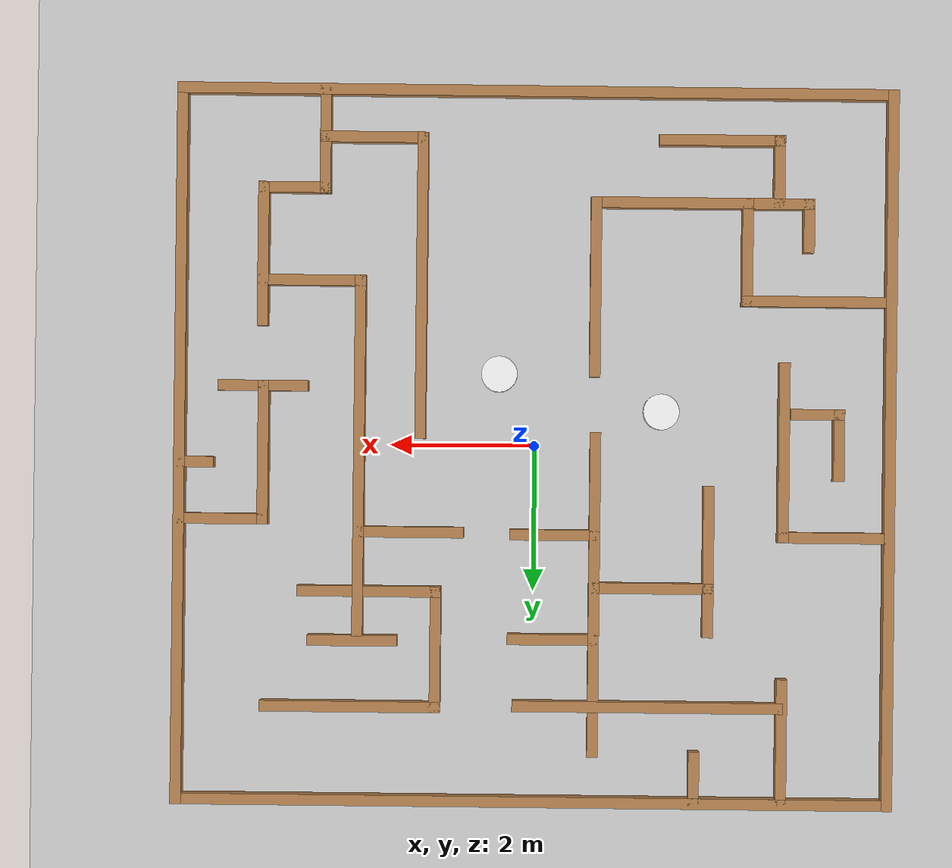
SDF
<sdf version="1.7">
 <world name="default">
  <light name="sun" type="directional">
   <pose>0 0 10 0 -0 0</pose>
   <diffuse>0.8 0.8 0.8 1</diffuse>
   <specular>0.2 0.2 0.2 1</specular>
   <attenuation>
    <range>1000</range>
    <constant>0.9</constant>
    <linear>0.01</linear>
    <quadratic>0.001</quadratic>
   </attenuation>
   <direction>-0.5 0.1 -0.9</direction>
   <spot><inner_angle>0</inner_angle><outer_angle>0</outer_angle><falloff>0</falloff></spot>
  </light>
  <model name="ground_plane">
   <static>1</static>
   <link name="link">
    <collision name="collision">
     <geometry><plane><normal>0 0 1</normal><size>100 100</size></plane></geometry>
     <surface>
      <contact><collide_bitmask>65535</collide_bitmask></contact>
      <friction><ode><mu>100</mu><mu2>50</mu2></ode></friction>
     </surface>
    </collision>
    <visual name="visual">
     <cast_shadows>0</cast_shadows>
     <geometry><plane><normal>0 0 1</normal><size>100 100</size></plane></geometry>
     <material>
      <script><uri>file://media/materials/scripts/gazebo.material</uri><name>Gazebo/Grey</name></script>
     </material>
    </visual>
   </link>
  </model>
  <gravity>0 0 -9.8</gravity>
  <magnetic_field>6e-06 2.3e-05 -4.2e-05</magnetic_field>
  <atmosphere type="adiabatic"/>
  <physics type="ode">
   <max_step_size>0.001</max_step_size>
   <real_time_factor>1</real_time_factor>
   <real_time_update_rate>1000</real_time_update_rate>
  </physics>
  <scene><ambient>0.4 0.4 0.4 1</ambient><background>0.7 0.7 0.7 1</background><shadows>1</shadows></scene>
  <audio><device>default</device></audio>
  <spherical_coordinates>
   <surface_model>EARTH_WGS84</surface_model>
   <latitude_deg>0</latitude_deg>
   <longitude_deg>0</longitude_deg>
   <elevation>0</elevation>
   <heading_deg>0</heading_deg>
  </spherical_coordinates>
  <model name="maze_one">
   <link name="Wall_1">
    <collision name="Wall_1_Collision">
     <geometry><box><size>10 0.15 0.5</size></box></geometry>
     <pose>0 0 0.25 0 -0 0</pose>
    </collision>
    <visual name="Wall_1_Visual">
     <pose>0 0 0.25 0 -0 0</pose>
     <geometry><box><size>10 0.15 0.5</size></box></geometry>
     <material>
      <script><uri>file://media/materials/scripts/gazebo.material</uri><name>Gazebo/Wood</name></script>
      <ambient>0.760784 0.662745 0.627451 1</ambient>
     </material>
     <meta><layer>0</layer></meta>
    </visual>
    <pose>-4.925 0 0 0 -0 -1.5708</pose>
   </link>
   <link name="Wall_11">
    <collision name="Wall_11_Collision">
     <geometry><box><size>2 0.15 0.5</size></box></geometry>
     <pose>0 0 0.25 0 -0 0</pose>
    </collision>
    <visual name="Wall_11_Visual">
     <pose>0 0 0.25 0 -0 0</pose>
     <geometry><box><size>2 0.15 0.5</size></box></geometry>
     <material>
      <script><uri>file://media/materials/scripts/gazebo.material</uri><name>Gazebo/Wood</name></script>
      <ambient>0.760784 0.662745 0.627451 1</ambient>
     </material>
     <meta><layer>0</layer></meta>
    </visual>
    <pose>3.764 0.118 0 0 -0 1.5708</pose>
   </link>
   <link name="Wall_12">
    <collision name="Wall_12_Collision">
     <geometry><box><size>1.25 0.15 0.5</size></box></geometry>
     <pose>0 0 0.25 0 -0 0</pose>
    </collision>
    <visual name="Wall_12_Visual">
     <pose>0 0 0.25 0 -0 0</pose>
     <geometry><box><size>1.25 0.15 0.5</size></box></geometry>
     <material>
      <script><uri>file://media/materials/scripts/gazebo.material</uri><name>Gazebo/Wood</name></script>
      <ambient>0.760784 0.662745 0.627451 1</ambient>
     </material>
     <meta><layer>0</layer></meta>
    </visual>
    <pose>4.314 1.043 0 0 -0 0</pose>
   </link>
   <link name="Wall_16">
    <collision name="Wall_16_Collision">
     <geometry><box><size>1.25 0.15 0.5</size></box></geometry>
     <pose>0 0 0.25 0 -0 0</pose>
    </collision>
    <visual name="Wall_16_Visual">
     <pose>0 0 0.25 0 -0 0</pose>
     <geometry><box><size>1.25 0.15 0.5</size></box></geometry>
     <material>
      <script><uri>file://media/materials/scripts/gazebo.material</uri><name>Gazebo/Wood</name></script>
      <ambient>0.760784 0.662745 0.627451 1</ambient>
     </material>
     <meta><layer>0</layer></meta>
    </visual>
    <pose>3.771 -0.807 0 0 -0 0</pose>
   </link>
   <link name="Wall_18">
    <collision name="Wall_18_Collision">
     <geometry><box><size>1.5 0.15 0.5</size></box></geometry>
     <pose>0 0 0.25 0 -0 0</pose>
    </collision>
    <visual name="Wall_18_Visual">
     <pose>0 0 0.25 0 -0 0</pose>
     <geometry><box><size>1.5 0.15 0.5</size></box></geometry>
     <material>
      <script><uri>file://media/materials/scripts/gazebo.material</uri><name>Gazebo/Wood</name></script>
      <ambient>0.760784 0.662745 0.627451 1</ambient>
     </material>
     <meta><layer>0</layer></meta>
    </visual>
    <pose>3.109 -2.275 0 0 -0 3.14159</pose>
   </link>
   <link name="Wall_19">
    <collision name="Wall_19_Collision">
     <geometry><box><size>5 0.15 0.5</size></box></geometry>
     <pose>0 0 0.25 0 -0 0</pose>
    </collision>
    <visual name="Wall_19_Visual">
     <pose>0 0 0.25 0 -0 0</pose>
     <geometry><box><size>5 0.15 0.5</size></box></geometry>
     <material>
      <script><uri>file://media/materials/scripts/gazebo.material</uri><name>Gazebo/Wood</name></script>
      <ambient>0.760784 0.662745 0.627451 1</ambient>
     </material>
     <meta><layer>0</layer></meta>
    </visual>
    <pose>2.434 0.15 0 0 -0 1.5708</pose>
   </link>
   <link name="Wall_2">
    <collision name="Wall_2_Collision">
     <geometry><box><size>10 0.15 0.5</size></box></geometry>
     <pose>0 0 0.25 0 -0 0</pose>
    </collision>
    <visual name="Wall_2_Visual">
     <pose>0 0 0.25 0 -0 0</pose>
     <geometry><box><size>10 0.15 0.5</size></box></geometry>
     <material>
      <script><uri>file://media/materials/scripts/gazebo.material</uri><name>Gazebo/Wood</name></script>
      <ambient>0.760784 0.662745 0.627451 1</ambient>
     </material>
     <meta><layer>0</layer></meta>
    </visual>
    <pose>0 -4.925 0 0 -0 0</pose>
   </link>
   <link name="Wall_21">
    <collision name="Wall_21_Collision">
     <geometry><box><size>2 0.15 0.5</size></box></geometry>
     <pose>0 0 0.25 0 -0 0</pose>
    </collision>
    <visual name="Wall_21_Visual">
     <pose>0 0 0.25 0 -0 0</pose>
     <geometry><box><size>2 0.15 0.5</size></box></geometry>
     <material>
      <script><uri>file://media/materials/scripts/gazebo.material</uri><name>Gazebo/Wood</name></script>
      <ambient>0.760784 0.662745 0.627451 1</ambient>
     </material>
     <meta><layer>0</layer></meta>
    </visual>
    <pose>2.275 2.029 0 0 -0 3.14159</pose>
   </link>
   <link name="Wall_22">
    <collision name="Wall_22_Collision">
     <geometry><box><size>1.75 0.15 0.5</size></box></geometry>
     <pose>0 0 0.25 0 -0 0</pose>
    </collision>
    <visual name="Wall_22_Visual">
     <pose>0 0 0.25 0 -0 0</pose>
     <geometry><box><size>1.75 0.15 0.5</size></box></geometry>
     <material>
      <script><uri>file://media/materials/scripts/gazebo.material</uri><name>Gazebo/Wood</name></script>
      <ambient>0.760784 0.662745 0.627451 1</ambient>
     </material>
     <meta><layer>0</layer></meta>
    </visual>
    <pose>1.35 2.829 0 0 -0 1.5708</pose>
   </link>
   <link name="Wall_23">
    <collision name="Wall_23_Collision">
     <geometry><box><size>2.5 0.15 0.5</size></box></geometry>
     <pose>0 0 0.25 0 -0 0</pose>
    </collision>
    <visual name="Wall_23_Visual">
     <pose>0 0 0.25 0 -0 0</pose>
     <geometry><box><size>2.5 0.15 0.5</size></box></geometry>
     <material>
      <script><uri>file://media/materials/scripts/gazebo.material</uri><name>Gazebo/Wood</name></script>
      <ambient>0.760784 0.662745 0.627451 1</ambient>
     </material>
     <meta><layer>0</layer></meta>
    </visual>
    <pose>2.525 3.629 0 0 -0 0</pose>
   </link>
   <link name="Wall_26">
    <collision name="Wall_26_Collision">
     <geometry><box><size>1.25 0.15 0.5</size></box></geometry>
     <pose>0 0 0.25 0 -0 0</pose>
    </collision>
    <visual name="Wall_26_Visual">
     <pose>0 0 0.25 0 -0 0</pose>
     <geometry><box><size>1.25 0.15 0.5</size></box></geometry>
     <material>
      <script><uri>file://media/materials/scripts/gazebo.material</uri><name>Gazebo/Wood</name></script>
      <ambient>0.760784 0.662745 0.627451 1</ambient>
     </material>
     <meta><layer>0</layer></meta>
    </visual>
    <pose>2.503 2.713 0 0 -0 0</pose>
   </link>
   <link name="Wall_28">
    <collision name="Wall_28_Collision">
     <geometry><box><size>3.75 0.15 0.5</size></box></geometry>
     <pose>0 0 0.25 0 -0 0</pose>
    </collision>
    <visual name="Wall_28_Visual">
     <pose>0 0 0.25 0 -0 0</pose>
     <geometry><box><size>3.75 0.15 0.5</size></box></geometry>
     <material>
      <script><uri>file://media/materials/scripts/gazebo.material</uri><name>Gazebo/Wood</name></script>
      <ambient>0.760784 0.662745 0.627451 1</ambient>
     </material>
     <meta><layer>0</layer></meta>
    </visual>
    <pose>-1.596 3.598 0 0 -0 3.14159</pose>
   </link>
   <link name="Wall_3">
    <collision name="Wall_3_Collision">
     <geometry><box><size>10 0.15 0.5</size></box></geometry>
     <pose>0 0 0.25 0 -0 0</pose>
    </collision>
    <visual name="Wall_3_Visual">
     <pose>0 0 0.25 0 -0 0</pose>
     <geometry><box><size>10 0.15 0.5</size></box></geometry>
     <material>
      <script><uri>file://media/materials/scripts/gazebo.material</uri><name>Gazebo/Wood</name></script>
      <ambient>0.760784 0.662745 0.627451 1</ambient>
     </material>
     <meta><layer>0</layer></meta>
    </visual>
    <pose>4.925 0 0 0 -0 1.5708</pose>
   </link>
   <link name="Wall_31">
    <collision name="Wall_31_Collision">
     <geometry><box><size>4.5 0.15 0.5</size></box></geometry>
     <pose>0 0 0.25 0 -0 0</pose>
    </collision>
    <visual name="Wall_31_Visual">
     <pose>0 0 0.25 0 -0 0</pose>
     <geometry><box><size>4.5 0.15 0.5</size></box></geometry>
     <material>
      <script><uri>file://media/materials/scripts/gazebo.material</uri><name>Gazebo/Wood</name></script>
      <ambient>0.760784 0.662745 0.627451 1</ambient>
     </material>
     <meta><layer>0</layer></meta>
    </visual>
    <pose>-0.842 2.046 0 0 -0 -1.5708</pose>
   </link>
   <link name="Wall_33">
    <collision name="Wall_33_Collision">
     <geometry><box><size>0.75 0.15 0.5</size></box></geometry>
     <pose>0 0 0.25 0 -0 0</pose>
    </collision>
    <visual name="Wall_33_Visual">
     <pose>0 0 0.25 0 -0 0</pose>
     <geometry><box><size>0.75 0.15 0.5</size></box></geometry>
     <material>
      <script><uri>file://media/materials/scripts/gazebo.material</uri><name>Gazebo/Wood</name></script>
      <ambient>0.760784 0.662745 0.627451 1</ambient>
     </material>
     <meta><layer>0</layer></meta>
    </visual>
    <pose>-2.25 4.582 0 0 -0 1.5708</pose>
   </link>
   <link name="Wall_35">
    <collision name="Wall_35_Collision">
     <geometry><box><size>1.25 0.15 0.5</size></box></geometry>
     <pose>0 0 0.25 0 -0 0</pose>
    </collision>
    <visual name="Wall_35_Visual">
     <pose>0 0 0.25 0 -0 0</pose>
     <geometry><box><size>1.25 0.15 0.5</size></box></geometry>
     <material>
      <script><uri>file://media/materials/scripts/gazebo.material</uri><name>Gazebo/Wood</name></script>
      <ambient>0.760784 0.662745 0.627451 1</ambient>
     </material>
     <meta><layer>0</layer></meta>
    </visual>
    <pose>-0.272 2.673 0 0 -0 0</pose>
   </link>
   <link name="Wall_37">
    <collision name="Wall_37_Collision">
     <geometry><box><size>1.25 0.15 0.5</size></box></geometry>
     <pose>0 0 0.25 0 -0 0</pose>
    </collision>
    <visual name="Wall_37_Visual">
     <pose>0 0 0.25 0 -0 0</pose>
     <geometry><box><size>1.25 0.15 0.5</size></box></geometry>
     <material>
      <script><uri>file://media/materials/scripts/gazebo.material</uri><name>Gazebo/Wood</name></script>
      <ambient>0.760784 0.662745 0.627451 1</ambient>
     </material>
     <meta><layer>0</layer></meta>
    </visual>
    <pose>-0.292 1.224 0 0 -0 0</pose>
   </link>
   <link name="Wall_4">
    <collision name="Wall_4_Collision">
     <geometry><box><size>10 0.15 0.5</size></box></geometry>
     <pose>0 0 0.25 0 -0 0</pose>
    </collision>
    <visual name="Wall_4_Visual">
     <pose>0 0 0.25 0 -0 0</pose>
     <geometry><box><size>10 0.15 0.5</size></box></geometry>
     <material>
      <script><uri>file://media/materials/scripts/gazebo.material</uri><name>Gazebo/Wood</name></script>
      <ambient>0.760784 0.662745 0.627451 1</ambient>
     </material>
     <meta><layer>0</layer></meta>
    </visual>
    <pose>0 4.925 0 0 -0 3.14159</pose>
   </link>
   <link name="Wall_40">
    <collision name="Wall_40_Collision">
     <geometry><box><size>1.5 0.15 0.5</size></box></geometry>
     <pose>0 0 0.25 0 -0 0</pose>
    </collision>
    <visual name="Wall_40_Visual">
     <pose>0 0 0.25 0 -0 0</pose>
     <geometry><box><size>1.5 0.15 0.5</size></box></geometry>
     <material>
      <script><uri>file://media/materials/scripts/gazebo.material</uri><name>Gazebo/Wood</name></script>
      <ambient>0.760784 0.662745 0.627451 1</ambient>
     </material>
     <meta><layer>0</layer></meta>
    </visual>
    <pose>1.723 1.204 0 0 -0 0</pose>
   </link>
   <link name="Wall_42">
    <collision name="Wall_42_Collision">
     <geometry><box><size>2.5 0.15 0.5</size></box></geometry>
     <pose>0 0 0.25 0 -0 0</pose>
    </collision>
    <visual name="Wall_42_Visual">
     <pose>0 0 0.25 0 -0 0</pose>
     <geometry><box><size>2.5 0.15 0.5</size></box></geometry>
     <material>
      <script><uri>file://media/materials/scripts/gazebo.material</uri><name>Gazebo/Wood</name></script>
      <ambient>0.760784 0.662745 0.627451 1</ambient>
     </material>
     <meta><layer>0</layer></meta>
    </visual>
    <pose>-0.822 -2.223 0 0 -0 -1.5708</pose>
   </link>
   <link name="Wall_43">
    <collision name="Wall_43_Collision">
     <geometry><box><size>2.25 0.15 0.5</size></box></geometry>
     <pose>0 0 0.25 0 -0 0</pose>
    </collision>
    <visual name="Wall_43_Visual">
     <pose>0 0 0.25 0 -0 0</pose>
     <geometry><box><size>2.25 0.15 0.5</size></box></geometry>
     <material>
      <script><uri>file://media/materials/scripts/gazebo.material</uri><name>Gazebo/Wood</name></script>
      <ambient>0.760784 0.662745 0.627451 1</ambient>
     </material>
     <meta><layer>0</layer></meta>
    </visual>
    <pose>-1.872 -3.398 0 0 -0 3.14159</pose>
   </link>
   <link name="Wall_44">
    <collision name="Wall_44_Collision">
     <geometry><box><size>1.5 0.15 0.5</size></box></geometry>
     <pose>0 0 0.25 0 -0 0</pose>
    </collision>
    <visual name="Wall_44_Visual">
     <pose>0 0 0.25 0 -0 0</pose>
     <geometry><box><size>1.5 0.15 0.5</size></box></geometry>
     <material>
      <script><uri>file://media/materials/scripts/gazebo.material</uri><name>Gazebo/Wood</name></script>
      <ambient>0.760784 0.662745 0.627451 1</ambient>
     </material>
     <meta><layer>0</layer></meta>
    </visual>
    <pose>-2.922 -2.723 0 0 -0 1.5708</pose>
   </link>
   <link name="Wall_45">
    <collision name="Wall_45_Collision">
     <geometry><box><size>2 0.15 0.5</size></box></geometry>
     <pose>0 0 0.25 0 -0 0</pose>
    </collision>
    <visual name="Wall_45_Visual">
     <pose>0 0 0.25 0 -0 0</pose>
     <geometry><box><size>2 0.15 0.5</size></box></geometry>
     <material>
      <script><uri>file://media/materials/scripts/gazebo.material</uri><name>Gazebo/Wood</name></script>
      <ambient>0.760784 0.662745 0.627451 1</ambient>
     </material>
     <meta><layer>0</layer></meta>
    </visual>
    <pose>-3.847 -2.048 0 0 -0 3.14159</pose>
   </link>
   <link name="Wall_47">
    <collision name="Wall_47_Collision">
     <geometry><box><size>1 0.15 0.5</size></box></geometry>
     <pose>0 0 0.25 0 -0 0</pose>
    </collision>
    <visual name="Wall_47_Visual">
     <pose>0 0 0.25 0 -0 0</pose>
     <geometry><box><size>1 0.15 0.5</size></box></geometry>
     <material>
      <script><uri>file://media/materials/scripts/gazebo.material</uri><name>Gazebo/Wood</name></script>
      <ambient>0.760784 0.662745 0.627451 1</ambient>
     </material>
     <meta><layer>0</layer></meta>
    </visual>
    <pose>-3.347 -3.398 0 0 -0 3.14159</pose>
   </link>
   <link name="Wall_48">
    <collision name="Wall_48_Collision">
     <geometry><box><size>0.75 0.15 0.5</size></box></geometry>
     <pose>0 0 0.25 0 -0 0</pose>
    </collision>
    <visual name="Wall_48_Visual">
     <pose>0 0 0.25 0 -0 0</pose>
     <geometry><box><size>0.75 0.15 0.5</size></box></geometry>
     <material>
      <script><uri>file://media/materials/scripts/gazebo.material</uri><name>Gazebo/Wood</name></script>
      <ambient>0.760784 0.662745 0.627451 1</ambient>
     </material>
     <meta><layer>0</layer></meta>
    </visual>
    <pose>-3.772 -3.098 0 0 -0 1.5708</pose>
   </link>
   <link name="Wall_50">
    <collision name="Wall_50_Collision">
     <geometry><box><size>1 0.15 0.5</size></box></geometry>
     <pose>0 0 0.25 0 -0 0</pose>
    </collision>
    <visual name="Wall_50_Visual">
     <pose>0 0 0.25 0 -0 0</pose>
     <geometry><box><size>1 0.15 0.5</size></box></geometry>
     <material>
      <script><uri>file://media/materials/scripts/gazebo.material</uri><name>Gazebo/Wood</name></script>
      <ambient>0.760784 0.662745 0.627451 1</ambient>
     </material>
     <meta><layer>0</layer></meta>
    </visual>
    <pose>-3.357 -3.847 0 0 -0 -1.5708</pose>
   </link>
   <link name="Wall_51">
    <collision name="Wall_51_Collision">
     <geometry><box><size>1.75 0.15 0.5</size></box></geometry>
     <pose>0 0 0.25 0 -0 0</pose>
    </collision>
    <visual name="Wall_51_Visual">
     <pose>0 0 0.25 0 -0 0</pose>
     <geometry><box><size>1.75 0.15 0.5</size></box></geometry>
     <material>
      <script><uri>file://media/materials/scripts/gazebo.material</uri><name>Gazebo/Wood</name></script>
      <ambient>0.760784 0.662745 0.627451 1</ambient>
     </material>
     <meta><layer>0</layer></meta>
    </visual>
    <pose>-2.557 -4.272 0 0 -0 0</pose>
   </link>
   <link name="Wall_54">
    <collision name="Wall_54_Collision">
     <geometry><box><size>0.75 0.15 0.5</size></box></geometry>
     <pose>0 0 0.25 0 -0 0</pose>
    </collision>
    <visual name="Wall_54_Visual">
     <pose>0 0 0.25 0 -0 0</pose>
     <geometry><box><size>0.75 0.15 0.5</size></box></geometry>
     <material>
      <script><uri>file://media/materials/scripts/gazebo.material</uri><name>Gazebo/Wood</name></script>
      <ambient>0.760784 0.662745 0.627451 1</ambient>
     </material>
     <meta><layer>0</layer></meta>
    </visual>
    <pose>-2.422 2.249 0 0 -0 1.5708</pose>
   </link>
   <link name="Wall_56">
    <collision name="Wall_56_Collision">
     <geometry><box><size>1.5 0.15 0.5</size></box></geometry>
     <pose>0 0 0.25 0 -0 0</pose>
    </collision>
    <visual name="Wall_56_Visual">
     <pose>0 0 0.25 0 -0 0</pose>
     <geometry><box><size>1.5 0.15 0.5</size></box></geometry>
     <material>
      <script><uri>file://media/materials/scripts/gazebo.material</uri><name>Gazebo/Wood</name></script>
      <ambient>0.760784 0.662745 0.627451 1</ambient>
     </material>
     <meta><layer>0</layer></meta>
    </visual>
    <pose>-2.422 1.274 0 0 -0 -1.5708</pose>
   </link>
   <link name="Wall_59">
    <collision name="Wall_59_Collision">
     <geometry><box><size>2.5 0.15 0.5</size></box></geometry>
     <pose>0 0 0.25 0 -0 0</pose>
    </collision>
    <visual name="Wall_59_Visual">
     <pose>0 0 0.25 0 -0 0</pose>
     <geometry><box><size>2.5 0.15 0.5</size></box></geometry>
     <material>
      <script><uri>file://media/materials/scripts/gazebo.material</uri><name>Gazebo/Wood</name></script>
      <ambient>0.760784 0.662745 0.627451 1</ambient>
     </material>
     <meta><layer>0</layer></meta>
    </visual>
    <pose>-3.455 0.049 0 0 -0 -1.5708</pose>
   </link>
   <link name="Wall_61">
    <collision name="Wall_61_Collision">
     <geometry><box><size>1.5 0.15 0.5</size></box></geometry>
     <pose>0 0 0.25 0 -0 0</pose>
    </collision>
    <visual name="Wall_61_Visual">
     <pose>0 0 0.25 0 -0 0</pose>
     <geometry><box><size>1.5 0.15 0.5</size></box></geometry>
     <material>
      <script><uri>file://media/materials/scripts/gazebo.material</uri><name>Gazebo/Wood</name></script>
      <ambient>0.760784 0.662745 0.627451 1</ambient>
     </material>
     <meta><layer>0</layer></meta>
    </visual>
    <pose>2.264 -4.267 0 0 -0 3.14159</pose>
   </link>
   <link name="Wall_62">
    <collision name="Wall_62_Collision">
     <geometry><box><size>4.25 0.15 0.5</size></box></geometry>
     <pose>0 0 0.25 0 -0 0</pose>
    </collision>
    <visual name="Wall_62_Visual">
     <pose>0 0 0.25 0 -0 0</pose>
     <geometry><box><size>4.25 0.15 0.5</size></box></geometry>
     <material>
      <script><uri>file://media/materials/scripts/gazebo.material</uri><name>Gazebo/Wood</name></script>
      <ambient>0.760784 0.662745 0.627451 1</ambient>
     </material>
     <meta><layer>0</layer></meta>
    </visual>
    <pose>1.589 -2.217 0 0 -0 1.5708</pose>
   </link>
   <link name="Wall_65">
    <collision name="Wall_65_Collision">
     <geometry><box><size>0.75 0.15 0.5</size></box></geometry>
     <pose>0 0 0.25 0 -0 0</pose>
    </collision>
    <visual name="Wall_65_Visual">
     <pose>0 0 0.25 0 -0 0</pose>
     <geometry><box><size>0.75 0.15 0.5</size></box></geometry>
     <material>
      <script><uri>file://media/materials/scripts/gazebo.material</uri><name>Gazebo/Wood</name></script>
      <ambient>0.760784 0.662745 0.627451 1</ambient>
     </material>
     <meta><layer>0</layer></meta>
    </visual>
    <pose>-3.918 -0.485 0 0 -0 3.14159</pose>
   </link>
   <link name="Wall_66">
    <collision name="Wall_66_Collision">
     <geometry><box><size>1 0.15 0.5</size></box></geometry>
     <pose>0 0 0.25 0 -0 0</pose>
    </collision>
    <visual name="Wall_66_Visual">
     <pose>0 0 0.25 0 -0 0</pose>
     <geometry><box><size>1 0.15 0.5</size></box></geometry>
     <material>
      <script><uri>file://media/materials/scripts/gazebo.material</uri><name>Gazebo/Wood</name></script>
      <ambient>0.760784 0.662745 0.627451 1</ambient>
     </material>
     <meta><layer>0</layer></meta>
    </visual>
    <pose>-4.218 -0.06 0 0 -0 1.5708</pose>
   </link>
   <link name="Wall_7">
    <collision name="Wall_7_Collision">
     <geometry><box><size>1.5 0.15 0.5</size></box></geometry>
     <pose>0 0 0.25 0 -0 0</pose>
    </collision>
    <visual name="Wall_7_Visual">
     <pose>0 0 0.25 0 -0 0</pose>
     <geometry><box><size>1.5 0.15 0.5</size></box></geometry>
     <material>
      <script><uri>file://media/materials/scripts/gazebo.material</uri><name>Gazebo/Wood</name></script>
      <ambient>0.760784 0.662745 0.627451 1</ambient>
     </material>
     <meta><layer>0</layer></meta>
    </visual>
    <pose>2.939 -4.235 0 0 -0 1.5708</pose>
   </link>
   <link name="Wall_70">
    <collision name="Wall_70_Collision">
     <geometry><box><size>0.5 0.15 0.5</size></box></geometry>
     <pose>0 0 0.25 0 -0 0</pose>
    </collision>
    <visual name="Wall_70_Visual">
     <pose>0 0 0.25 0 -0 0</pose>
     <geometry><box><size>0.5 0.15 0.5</size></box></geometry>
     <material>
      <script><uri>file://media/materials/scripts/gazebo.material</uri><name>Gazebo/Wood</name></script>
      <ambient>0.760784 0.662745 0.627451 1</ambient>
     </material>
     <meta><layer>0</layer></meta>
    </visual>
    <pose>4.695 0.259 0 0 -0 3.14159</pose>
   </link>
   <link name="Wall_72">
    <collision name="Wall_72_Collision">
     <geometry><box><size>1.7 0.15 0.5</size></box></geometry>
     <pose>0 0 0.25 0 -0 0</pose>
    </collision>
    <visual name="Wall_72_Visual">
     <pose>0 0 0.25 0 -0 0</pose>
     <geometry><box><size>1.7 0.15 0.5</size></box></geometry>
     <material>
      <script><uri>file://media/materials/scripts/gazebo.material</uri><name>Gazebo/Wood</name></script>
      <ambient>0.760784 0.662745 0.627451 1</ambient>
     </material>
     <meta><layer>0</layer></meta>
    </visual>
    <pose>-1.647 1.949 0 0 -0 0</pose>
   </link>
   <link name="Wall_74">
    <collision name="Wall_74_Collision">
     <geometry><box><size>1.5 0.15 0.5</size></box></geometry>
     <pose>0 0 0.25 0 -0 0</pose>
    </collision>
    <visual name="Wall_74_Visual">
     <pose>0 0 0.25 0 -0 0</pose>
     <geometry><box><size>1.5 0.15 0.5</size></box></geometry>
     <material>
      <script><uri>file://media/materials/scripts/gazebo.material</uri><name>Gazebo/Wood</name></script>
      <ambient>0.760784 0.662745 0.627451 1</ambient>
     </material>
     <meta><layer>0</layer></meta>
    </visual>
    <pose>-4.13 1.224 0 0 -0 3.14159</pose>
   </link>
   <link name="Wall_76">
    <collision name="Wall_76_Collision">
     <geometry><box><size>1.75 0.15 0.5</size></box></geometry>
     <pose>0 0 0.25 0 -0 0</pose>
    </collision>
    <visual name="Wall_76_Visual">
     <pose>0 0 0.25 0 -0 0</pose>
     <geometry><box><size>1.75 0.15 0.5</size></box></geometry>
     <material>
      <script><uri>file://media/materials/scripts/gazebo.material</uri><name>Gazebo/Wood</name></script>
      <ambient>0.760784 0.662745 0.627451 1</ambient>
     </material>
     <meta><layer>0</layer></meta>
    </visual>
    <pose>-3.457 4.065 0 0 -0 -1.5708</pose>
   </link>
   <link name="Wall_8">
    <collision name="Wall_8_Collision">
     <geometry><box><size>1 0.15 0.5</size></box></geometry>
     <pose>0 0 0.25 0 -0 0</pose>
    </collision>
    <visual name="Wall_8_Visual">
     <pose>0 0 0.25 0 -0 0</pose>
     <geometry><box><size>1 0.15 0.5</size></box></geometry>
     <material>
      <script><uri>file://media/materials/scripts/gazebo.material</uri><name>Gazebo/Wood</name></script>
      <ambient>0.760784 0.662745 0.627451 1</ambient>
     </material>
     <meta><layer>0</layer></meta>
    </visual>
    <pose>3.364 -3.56 0 0 -0 0</pose>
   </link>
   <link name="Wall_9">
    <collision name="Wall_9_Collision">
     <geometry><box><size>2 0.15 0.5</size></box></geometry>
     <pose>0 0 0.25 0 -0 0</pose>
    </collision>
    <visual name="Wall_9_Visual">
     <pose>0 0 0.25 0 -0 0</pose>
     <geometry><box><size>2 0.15 0.5</size></box></geometry>
     <material>
      <script><uri>file://media/materials/scripts/gazebo.material</uri><name>Gazebo/Wood</name></script>
      <ambient>0.760784 0.662745 0.627451 1</ambient>
     </material>
     <meta><layer>0</layer></meta>
    </visual>
    <pose>3.789 -2.635 0 0 -0 1.5708</pose>
   </link>
   <static>1</static>
  </model>
  <model name="moving_white_cylinder">
   <link name="link">
    <inertial>
     <mass>1</mass>
     <inertia><ixx>0.145833</ixx><ixy>0</ixy><ixz>0</ixz><iyy>0.145833</iyy><iyz>0</iyz><izz>0.125</izz></inertia>
    </inertial>
    <visual name="visual">
     <geometry><cylinder><radius>0.25</radius><length>0.5</length></cylinder></geometry>
     <material>
      <script><name>Gazebo/Pedestrian</name><uri>file://media/materials/scripts/gazebo.material</uri></script>
      <shader type="pixel"><normal_map>__default__</normal_map></shader>
      <ambient>0.98 0.98 0.98 1</ambient>
      <diffuse>0.976 0.976 0.976 1</diffuse>
      <specular>0.976 0.976 0.976 1</specular>
      <emissive>0.976 0.976 0.976 1</emissive>
     </material>
     <pose>0 0 -0.25 0 -0 0</pose>
    </visual>
    <collision name="collision">
     <pose>0 0 -0.25 0 -0 0</pose>
     <geometry><cylinder><radius>0.25</radius><length>0.5</length></cylinder></geometry>
     <surface>
      <friction>
       <ode><mu>1</mu><mu2>1</mu2><fdir1>0 0 0</fdir1><slip1>0</slip1><slip2>0</slip2></ode>
       <torsional>
        <coefficient>1</coefficient>
        <patch_radius>0</patch_radius>
        <surface_radius>0</surface_radius>
        <use_patch_radius>1</use_patch_radius>
        <ode><slip>0</slip></ode>
       </torsional>
      </friction>
      <bounce><restitution_coefficient>0</restitution_coefficient><threshold>1e+06</threshold></bounce>
      <contact>
       <collide_without_contact>0</collide_without_contact>
       <collide_without_contact_bitmask>1</collide_without_contact_bitmask>
       <collide_bitmask>1</collide_bitmask>
       <ode>
        <soft_cfm>0</soft_cfm>
        <soft_erp>0.2</soft_erp>
        <kp>1e+13</kp>
        <kd>1</kd>
        <max_vel>0.01</max_vel>
        <min_depth>0</min_depth>
       </ode>
       <bullet>
        <split_impulse>1</split_impulse>
        <split_impulse_penetration_threshold>-0.01</split_impulse_penetration_threshold>
        <soft_cfm>0</soft_cfm>
        <soft_erp>0.2</soft_erp>
        <kp>1e+13</kp>
        <kd>1</kd>
       </bullet>
      </contact>
     </surface>
    </collision>
   </link>
   <static>0</static>
   <pose>0.5 -1 0.499992 1e-06 -1e-06 0</pose>
   <plugin name="dyn_obst_plugin" filename="libdyn_obst_plugin.so">
    <axis>y</axis>
    <amplitude>1.5</amplitude>
    <frequency>1.0</frequency>
   </plugin>
  </model>
  <model name="moving_white_cylinder_0">
   <link name="link">
    <inertial>
     <mass>1</mass>
     <inertia><ixx>0.145833</ixx><ixy>0</ixy><ixz>0</ixz><iyy>0.145833</iyy><iyz>0</iyz><izz>0.125</izz></inertia>
    </inertial>
    <visual name="visual">
     <geometry><cylinder><radius>0.25</radius><length>0.5</length></cylinder></geometry>
     <material>
      <script><name>Gazebo/Pedestrian</name><uri>file://media/materials/scripts/gazebo.material</uri></script>
      <shader type="pixel"><normal_map>__default__</normal_map></shader>
      <ambient>0.98 0.98 0.98 1</ambient>
      <diffuse>0.976 0.976 0.976 1</diffuse>
      <specular>0.976 0.976 0.976 1</specular>
      <emissive>0.976 0.976 0.976 1</emissive>
     </material>
     <pose>0 0 -0.25 0 -0 0</pose>
    </visual>
    <collision name="collision">
     <pose>0 0 -0.25 0 -0 0</pose>
     <geometry><cylinder><radius>0.25</radius><length>0.5</length></cylinder></geometry>
     <surface>
      <friction>
       <ode><mu>1</mu><mu2>1</mu2><fdir1>0 0 0</fdir1><slip1>0</slip1><slip2>0</slip2></ode>
       <torsional>
        <coefficient>1</coefficient>
        <patch_radius>0</patch_radius>
        <surface_radius>0</surface_radius>
        <use_patch_radius>1</use_patch_radius>
        <ode><slip>0</slip></ode>
       </torsional>
      </friction>
      <bounce><restitution_coefficient>0</restitution_coefficient><threshold>1e+06</threshold></bounce>
      <contact>
       <collide_without_contact>0</collide_without_contact>
       <collide_without_contact_bitmask>1</collide_without_contact_bitmask>
       <collide_bitmask>1</collide_bitmask>
       <ode>
        <soft_cfm>0</soft_cfm>
        <soft_erp>0.2</soft_erp>
        <kp>1e+13</kp>
        <kd>1</kd>
        <max_vel>0.01</max_vel>
        <min_depth>0</min_depth>
       </ode>
       <bullet>
        <split_impulse>1</split_impulse>
        <split_impulse_penetration_threshold>-0.01</split_impulse_penetration_threshold>
        <soft_cfm>0</soft_cfm>
        <soft_erp>0.2</soft_erp>
        <kp>1e+13</kp>
        <kd>1</kd>
       </bullet>
      </contact>
     </surface>
    </collision>
   </link>
   <static>0</static>
   <pose>-1.75 -0.5 0.499998 -1e-06 0 0</pose>
   <plugin name="dyn_obst_plugin" filename="libdyn_obst_plugin.so">
    <axis>y</axis>
    <amplitude>1.5</amplitude>
    <frequency>-1.0</frequency>
   </plugin>
  </model>
 </world>
</sdf>
